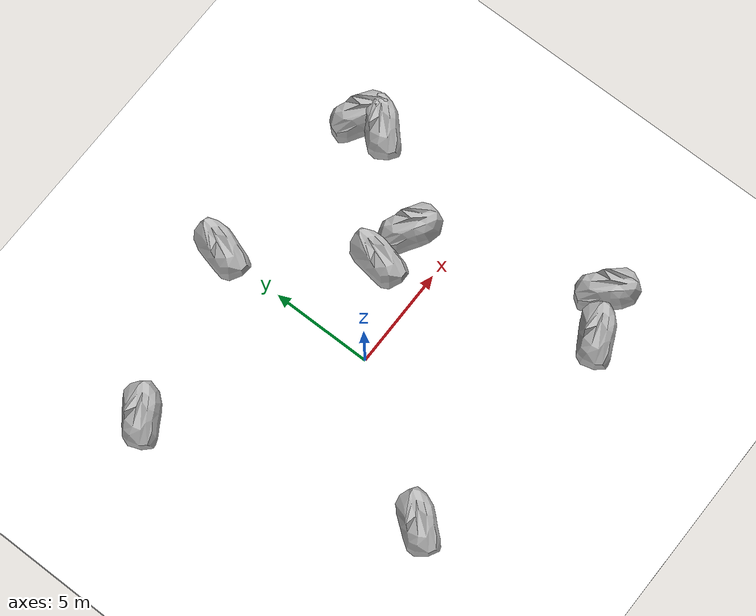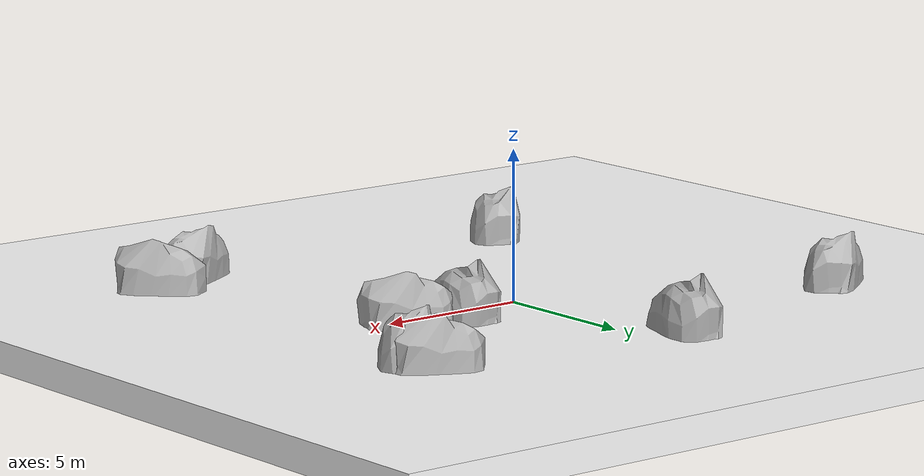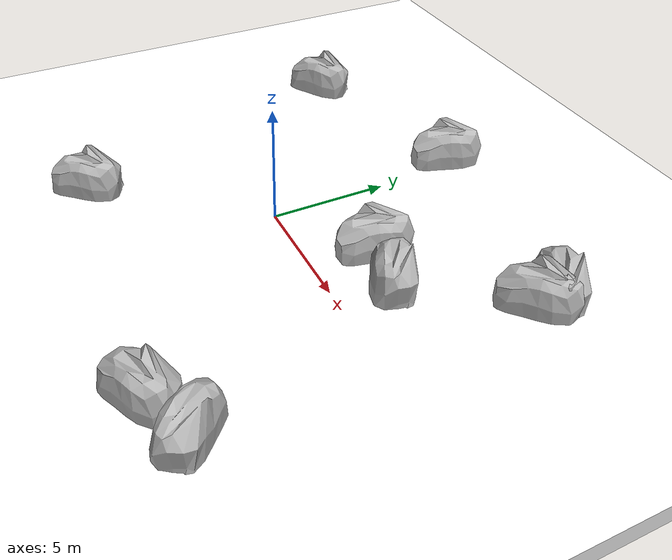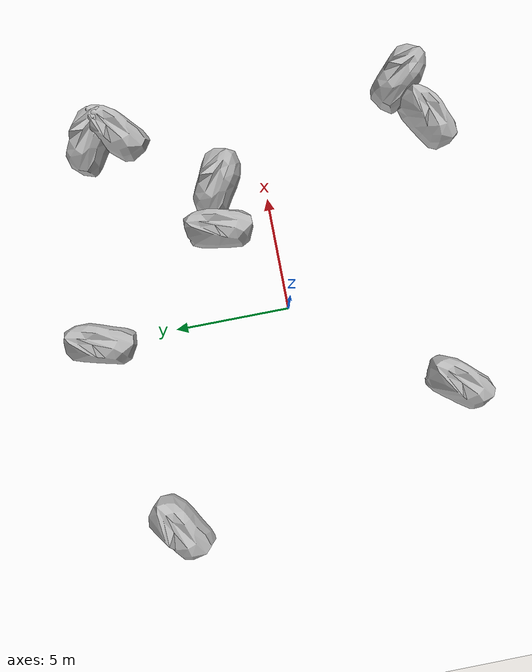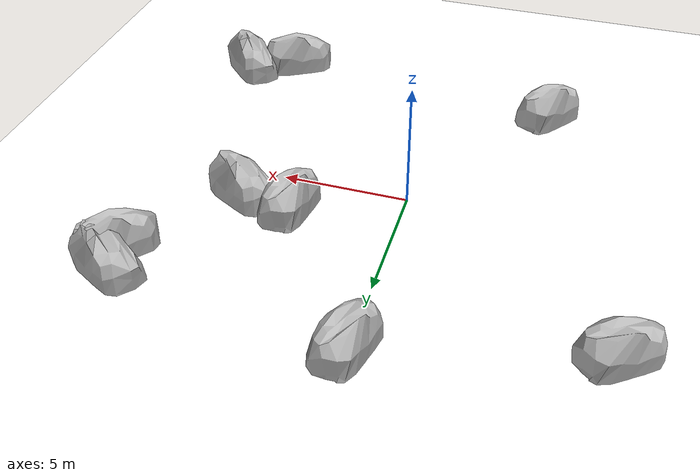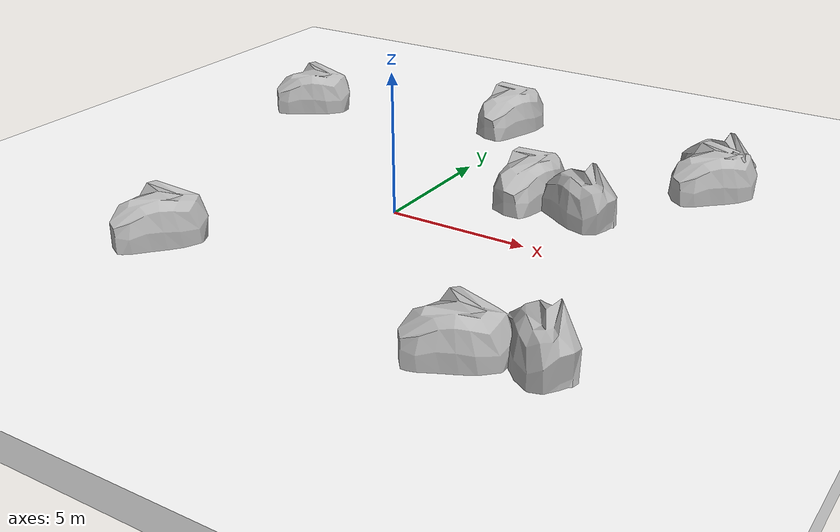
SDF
<sdf version="1.10">
 <world name="hydro">
  <physics name="physics" type="ode">
   <max_step_size>0.001</max_step_size>
   <real_time_factor>1.0</real_time_factor>
  </physics>
  <plugin filename="gz-sim-buoyancy-system" name="gz::sim::systems::Buoyancy">
   <uniform_fluid_density>1000</uniform_fluid_density>
   <enable>rov</enable>
  </plugin>
  <scene>
   <ambient>0.15 0.20 0.30 1</ambient>
   <background>0.02 0.05 0.10 1</background>
   <fog><color>0.00 0.18 0.30 1</color><type>linear</type><start>15</start><end>120</end></fog>
  </scene>
  <light name="sun" type="directional">
   <pose>0 0 100 0 0 0</pose>
   <diffuse>0.7 0.7 0.7 1</diffuse>
   <specular>0.2 0.2 0.2 1</specular>
   <direction>0 0 -1</direction>
  </light>
  <model name="water_surface">
   <static>true</static>
   <link name="water">
    <visual name="visual">
     <pose>0 0 10 0 0 0</pose>
     <geometry><plane><normal>0 0 1</normal><size>1000 1000</size></plane></geometry>
     <material>
      <ambient>0.0 0.15 0.25 0.35</ambient>
      <diffuse>0.0 0.25 0.40 0.35</diffuse>
      <specular>0.8 0.8 0.8 1</specular>
     </material>
    </visual>
   </link>
  </model>
  <model name="ocean_floor">
   <static>true</static>
   <link name="floor">
    <collision name="collision">
     <geometry><plane><normal>0 0 1</normal><size>1000 1000</size></plane></geometry>
    </collision>
    <visual name="visual">
     <geometry><plane><normal>0 0 1</normal><size>1000 1000</size></plane></geometry>
     <material>
      <ambient>1 1 1 1</ambient>
      <diffuse>1 1 1 1</diffuse>
      <specular>0.05 0.05 0.05 1</specular>
      <pbr>
       <metal>
        <albedo_map>file://materials/stone/seamless_stone_pbr_texture_with_rugged_natural_rock_surface.png</albedo_map>
       </metal>
      </pbr>
     </material>
    </visual>
   </link>
  </model>
  <include><name>rock_1</name><uri>model://rocks</uri><pose>-7.8 5.8 0.5 0 0 0.6</pose></include>
  <include><name>rock_2</name><uri>model://rocks</uri><pose>4.5 2.4 0.5 0 0 1.4</pose></include>
  <include><name>rock_3</name><uri>model://rocks</uri><pose>5.8 1.5 0.5 0 0 -0.5</pose></include>
  <include><name>rock_4</name><uri>model://rocks</uri><pose>-4.0 -6.7 0.5 0 0 0.9</pose></include>
  <include><name>rock_5</name><uri>model://rocks</uri><pose>7.5 -8.0 0.5 0 0 0.5</pose></include>
  <include><name>rock_6</name><uri>model://rocks</uri><pose>8.8 -7.2 0.5 0 0 -0.8</pose></include>
  <include><name>rock_7</name><uri>model://rocks</uri><pose>0.5 8.2 0.5 0 0 1.3</pose></include>
  <include><name>rock_8</name><uri>model://rocks</uri><pose>8.7 6.6 0.5 0 0 -0.5</pose></include>
  <include><name>rock_9</name><uri>model://rocks</uri><pose>9.5 5.8 0.5 0 0 0.8</pose></include>
  <include><name>seastar1</name><uri>model://seastar</uri><pose>-8.4 4.1 0.05 1.5708 0 0.2</pose></include>
  <include><name>seastar2</name><uri>model://seastar</uri><pose>4.1 1.0 0.05 1.5708 0 -1.2</pose></include>
  <include><name>seastar3</name><uri>model://seastar</uri><pose>-5.4 -7.4 0.05 1.5708 0 1.9</pose></include>
  <include><name>seastar4</name><uri>model://seastar</uri><pose>8.7 -8.8 0.05 1.5708 0 1.4</pose></include>
  <include><name>seastar5</name><uri>model://seastar</uri><pose>-0.9 7.4 0.05 1.5708 0 2.4</pose></include>
  <include><name>seastar6</name><uri>model://seastar</uri><pose>8.0 5.6 0.05 1.5708 0 -0.9</pose></include>
 </world>
</sdf>

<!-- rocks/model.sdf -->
<sdf version="1.10">

<model name="rocks">

  <static>true</static>

  <link name="rock">

    <collision name="collision">

      <geometry>

        <box>

          <size>2 2 1</size>

        </box>

      </geometry>

    </collision>

     <visual name="visual">

  <geometry>

    <mesh>

     <uri>model://rocks/meshes/Rock1.obj</uri>
      <scale>1 1 1</scale>

    </mesh>

       </geometry>

    </visual>

  </link>

</model>

</sdf>

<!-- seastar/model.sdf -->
<sdf version="1.10">

<model name="seastar">

  <static>true</static>

  <link name="seastar">

    <collision name="collision">

      <geometry>

        <box>

          <size>0.4 0.4 0.1</size>

        </box>

      </geometry>

    </collision>

    <visual name="visual">

      <geometry>

        <mesh>

          <uri>model://seastar/meshes/seastar.obj</uri>

          <scale>1 1 1</scale>

        </mesh>

      </geometry>

    </visual>

  </link>

</model>

</sdf>
